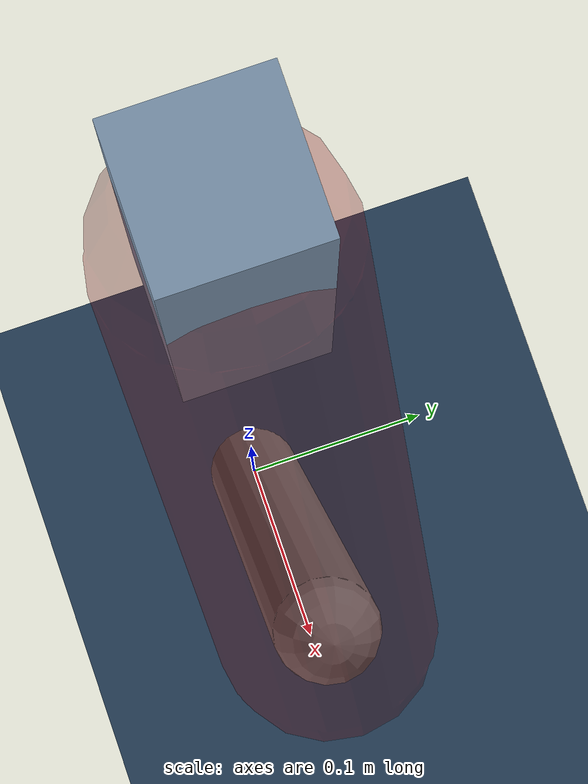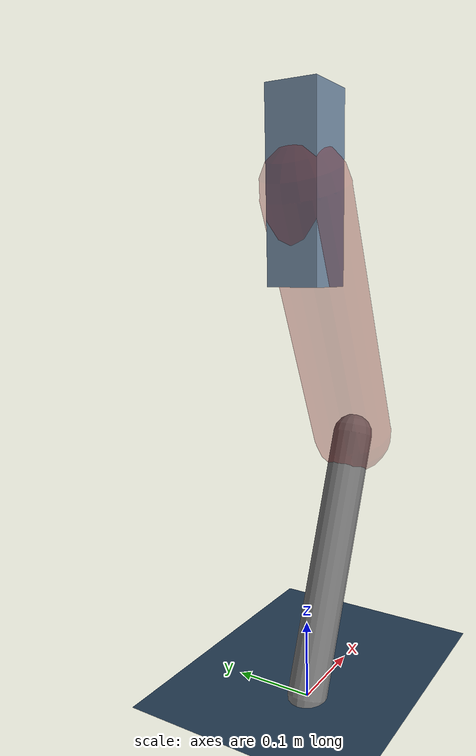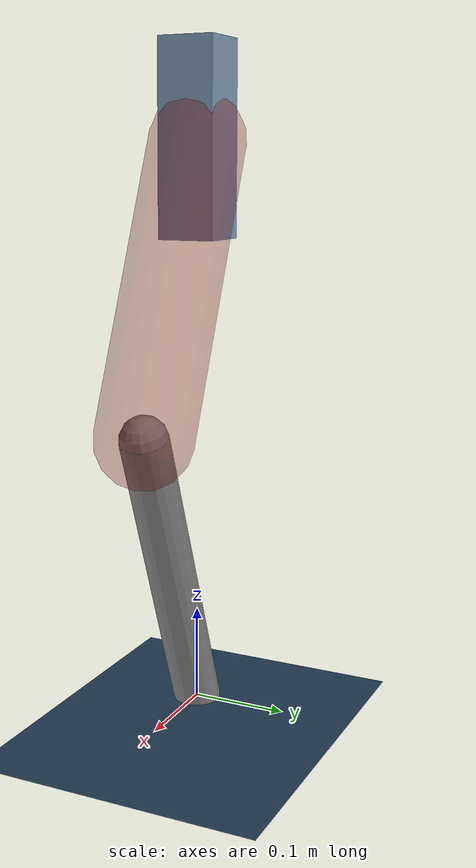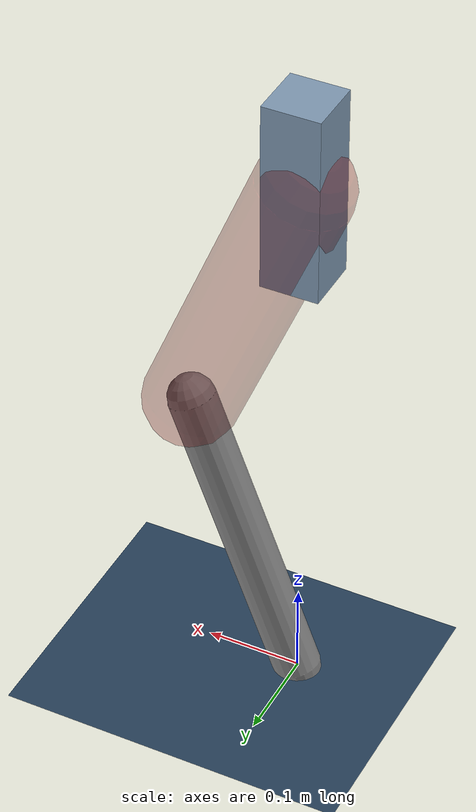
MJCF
<mujoco model="Hopper2D">
	<compiler inertiafromgeom="true" angle="radian" />
	<option timestep="0.001" integrator="implicit" cone="elliptic" solver="Newton" tolerance="1e-10" />

	<default>
		<geom contype="1" conaffinity="1" condim="3" friction="2 0.005 0.0001" solref="0.005 1" />
		<joint limited="true" damping="0.1" />
	</default>

	<asset>
		<texture name="skybox" type="skybox" builtin="gradient" rgb1=".4 .6 .8" rgb2="0 0 0" width="800" height="800" />
		<texture name="grid" type="2d" builtin="checker" rgb1=".1 .2 .3" rgb2=".2 .3 .4" width="300" height="300" mark="edge" markrgb=".2 .3 .4" />
		<material name="ground" texture="grid" texrepeat="1 1" texuniform="true" reflectance="0.1" />
		<material name="leg" rgba="0.5 0.6 0.7 1" />
	</asset>

	<worldbody>

		<geom name="floor" type="plane" size="5 5 0.25" material="ground" />

		<light directional="false" diffuse="0.8 0.8 0.8" specular="0.3 0.3 0.3" pos="0 0 2" dir="0 0 -1" />
		<light mode="targetbodycom" target="base" directional="false" diffuse="0.8 0.8 0.8" specular="0.3 0.3 0.3" pos="0 0 2" dir="0 0 -1" />

		<camera name="fixed" pos="0 -2 1" xyaxes="1 0 0 0 0 1" />
		<camera name="tracking" mode="trackcom" pos="0 -3 1" />

		<body name="root" pos="0 0 0.5998581927871472">
			<joint name="slide_x" type="slide" axis="1 0 0" range="-100 100" />
			<joint name="slide_z" type="slide" axis="0 0 1" range="0 10" />

			<body name="base" pos="0 0 0">
				<geom name="torso" type="box" size="0.03 0.03 0.1" mass="2.654" material="leg" />

				<body name="link1" pos="0 0 0" euler="0 1.1784512418816953 0">
					<joint type="hinge" axis="0 -1 0" pos="0 0 0" name="hinge1" limited="true" range="-3.14 3.14" stiffness="0" damping="0.1" />
					<geom name="thigh" type="capsule" fromto="0 0 0 0.31119148732276936 0 0" size="0.05" rgba="0.5 0 0 0.3" mass="1.0191170157714773" />

					<body name="link2" pos="0.31119148732276936 0 0" euler="0 0.7563514768302602 0">
						<joint type="hinge" axis="0 -1 0" pos="0 0 0" name="hinge2" limited="true" range="-3.14 3.14" stiffness="0" damping="0.1" />
						<geom name="shank" type="capsule" fromto="0 0 0 0.33421077763193213 0 0" size="0.025" mass="0.5111686221055457" />

					</body>
				</body>
			</body>
		</body>
	</worldbody>

	<actuator>
		<motor name="torque1" joint="hinge1" ctrlrange="-129.04445977700703 129.04445977700703" ctrllimited="true" gear="1" />
		<motor name="torque2" joint="hinge2" ctrlrange="-38.291539127108905 38.291539127108905" ctrllimited="true" gear="1" />
	</actuator>
</mujoco>
